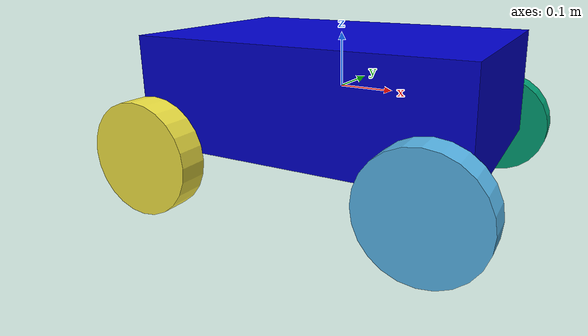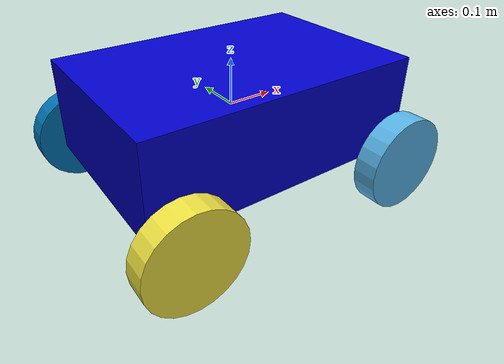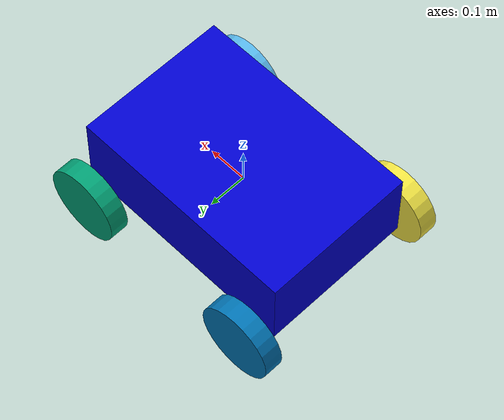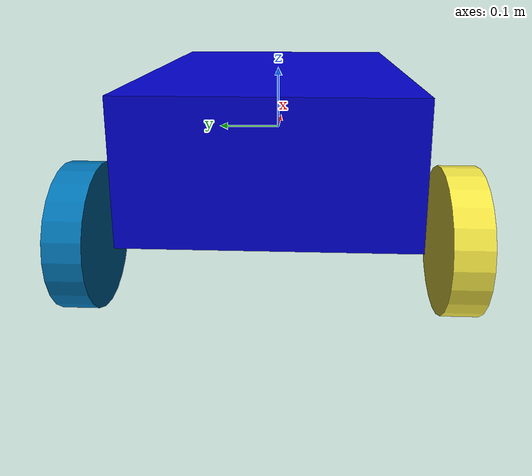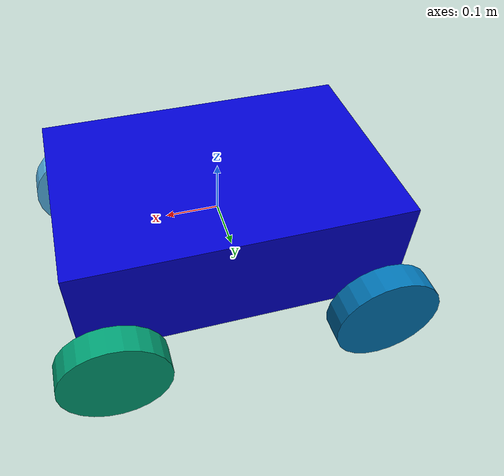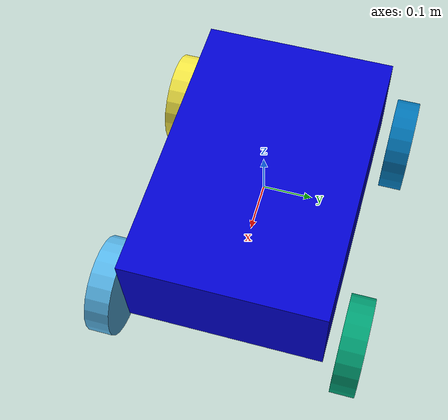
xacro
<?xml version="1.0"?>

<robot name="rover" xmlns:xacro="http://www.ros.org/wiki/xacro">

    <!-- параметры -->
    <xacro:property name="base_length"      value="0.6" />
    <xacro:property name="base_width"       value="0.4" />
    <xacro:property name="base_height"      value="0.2" />

    <xacro:property name="wheel_radius"     value="0.1" />
    <xacro:property name="wheel_width"      value="0.05"/>
    <xacro:property name="wheel_base"       value="0.4" />
    <xacro:property name="clearance"        value="0.1" />

    <xacro:property name="wheel_x_dist"     value="0.5" />
    <xacro:property name="wheel_y_dist"     value="0.5" />  <!--or wheel_separation-->

    <!-- визуальные материалы -->
    <material name="blue">
        <color rgba="0 0 0.8 1"/>
    </material>

    <!-- макрос для колеса -->
    <xacro:macro name="wheel" params="name x y z">
        <link name="${name}_link">
            <visual>
                <geometry>
                    <cylinder radius="${wheel_radius}" length="${wheel_width}"/>
                </geometry>

                <origin xyz="0 0 0" rpy="${pi/2} 0 0"/> <!-- поворот оси -->
            </visual>

            <collision>
                <geometry>
                    <cylinder radius="${wheel_radius}" length="${wheel_width}"/>
                </geometry>

                <origin xyz="0 0 0" rpy="${pi/2} 0 0"/>
            </collision>

            <inertial>
                <mass value="1"/>
                <inertia ixx="0.01" ixy="0.0" ixz="0.0" iyy="0.01" iyz="0.0" izz="0.01"/>
            </inertial>
        </link>

        <joint name="${name}_joint" type="continuous">
            <parent link="base_link"/>
            <child link="${name}_link"/>
            <origin xyz="${x} ${y} ${z}" rpy="0 0 0"/>
            <axis xyz="0 1 0"/>
        </joint>
    </xacro:macro>

    <!-- база робота -->
    <link name="base_link">
        <visual>
            <geometry>
                <box size="${base_length} ${base_width} ${base_height}"/>
            </geometry>

            <material name="blue"/>
        </visual>

        <collision>
            <geometry>
                <box size="${base_length} ${base_width} ${base_height}"/>
            </geometry>
        </collision>

        <inertial>gazebo --verbose
            <mass value="10"/>
            <inertia ixx="0.1" ixy="0.0" ixz="0.0" iyy="0.1" iyz="0.0" izz="0.1"/>
        </inertial>
    </link>

     <!-- установка колёс -->
    <xacro:wheel name="front_left"  x="${ wheel_x_dist/2}"  y="${-wheel_y_dist/2}" z="-${clearance}"/>
    <xacro:wheel name="front_right" x="${ wheel_x_dist/2}"  y="${ wheel_y_dist/2}" z="-${clearance}"/>
    <xacro:wheel name="back_left"   x="${-wheel_x_dist/2}"  y="${-wheel_y_dist/2}" z="-${clearance}"/>
    <xacro:wheel name="back_right"  x="${-wheel_x_dist/2}"  y="${ wheel_y_dist/2}" z="-${clearance}"/>

    <!-- ros2_control -->robot_description': Command(['xacro', ' ', rover_model_xacro])}
    <ros2_control name="RoverSystem" type="system">
        <hardware>
            <plugin>gazebo_ros2_control/GazeboROS2ControlPlugin</plugin>
        </hardware>

        <joint name="front_left_joint">
            <command_interface name="velocity"/>
            <state_interface   name="velocity"/>
            <state_interface   name="position"/>
        </joint>

        <joint name="front_right_joint">
            <command_interface name="velocity"/>
            <state_interface   name="velocity"/>
            <state_interface   name="position"/>
        </joint>

        <joint name="back_left_joint">
            <command_interface name="velocity"/>
            <state_interface   name="velocity"/>
            <state_interface   name="position"/>
        </joint>

        <joint name="back_right_joint">
            <command_interface name="velocity"/>
            <state_interface   name="velocity"/>
            <state_interface   name="position"/>
        </joint>
    </ros2_control>

    <!-- Gazebo plugin for ros2_control -->
    <gazebo>
        <plugin name="gazebo_ros2_control" filename="libgazebo_ros2_control.so"/>
    </gazebo>
</robot>
